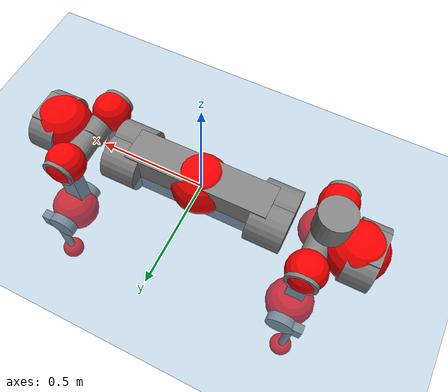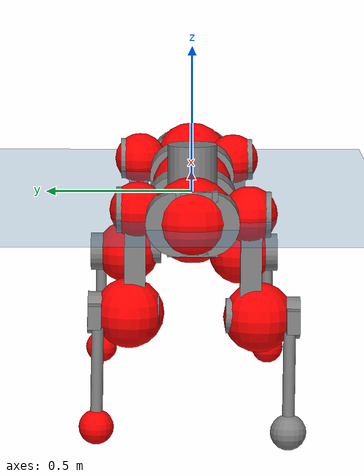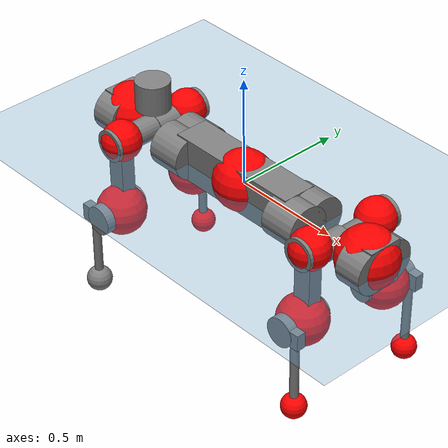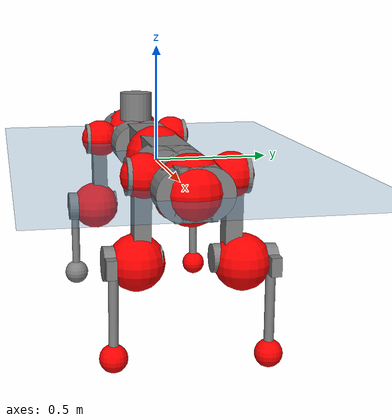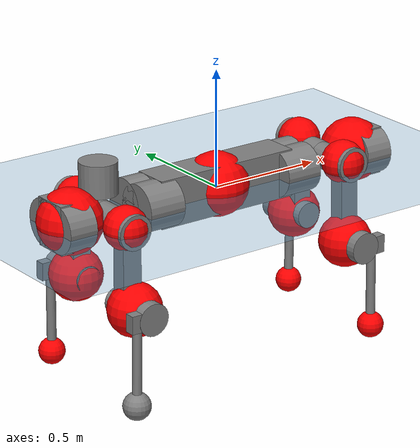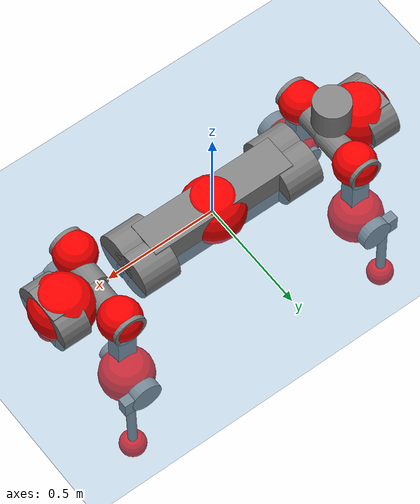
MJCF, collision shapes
<mujoco model="anymal_c">
  <compiler angle="radian" assetdir="assets" balanceinertia="true" inertiafromgeom="false"/>

  <option timestep="0.005" density="1.2" viscosity="2e-05"/>

  <size nkey="1"/>

  <visual>
    <quality shadowsize="8192"/>
    <map shadowclip="0.5"/>
  </visual>

  <default>
    <default class="/">
      <material specular="0" shininess="0.25"/>
      <geom contype="0" conaffinity="0" group="1" solref="-1000 -80"/>
      <site size="0.01 0.005 0.005" group="5"/>
      <general forcelimited="true" forcerange="-80 80" biastype="affine" gainprm="80" biasprm="0 -80 -2"/>
      <default class="anymal_c">
        <joint armature="0.01" damping="0.01" frictionloss="0.1"/>
        <default class="visual">
          <geom type="mesh" group="2"/>
          <default class="visual_zflip"/>
        </default>
        <default class="collision">
          <geom type="cylinder" group="3"/>
          <default class="foot">
            <geom size="0.03 0 0" type="sphere" condim="6" priority="1" friction="0.8 0.02 0.01" solimp="0.015 1 0.03"/>
          </default>
        </default>
      </default>
      <default class="reward_collision_sphere">
        <geom group="5" rgba="1 0 0 1"/>
      </default>
    </default>
  </default>

  <asset>
    <texture type="skybox" colorspace="auto" name="//unnamed_texture_0" builtin="gradient" rgb1="0.95 0.95 0.95" rgb2="0.95 0.95 0.95" width="100" height="600"/>
    <texture type="2d" colorspace="auto" name="texplane" builtin="checker" rgb1="0.345 0.575 0.748" rgb2="0.345 0.575 0.748" markrgb="1 1 1" width="512" height="512"/>
    <texture type="2d" colorspace="linear" name="base" file="base.png"/>
    <texture type="2d" colorspace="linear" name="top_shell" file="top_shell.png"/>
    <texture type="2d" colorspace="linear" name="bottom_shell" file="bottom_shell.png"/>
    <texture type="2d" colorspace="linear" name="remote" file="remote.png"/>
    <texture type="2d" colorspace="linear" name="hatch" file="hatch.png"/>
    <texture type="2d" colorspace="linear" name="handle" file="handle.png"/>
    <texture type="2d" colorspace="linear" name="face" file="face.png"/>
    <texture type="2d" colorspace="linear" name="battery" file="battery.png"/>
    <texture type="2d" colorspace="linear" name="lidar_cage" file="lidar_cage.png"/>
    <texture type="2d" colorspace="linear" name="depth_camera" file="depth_camera.png"/>
    <texture type="2d" colorspace="linear" name="wide_angle_camera" file="wide_angle_camera.png"/>
    <texture type="2d" colorspace="linear" name="lidar" file="lidar.png"/>
    <texture type="2d" colorspace="linear" name="drive" file="drive.png"/>
    <texture type="2d" colorspace="linear" name="hip_l" file="hip_l.png"/>
    <texture type="2d" colorspace="linear" name="shank_l" file="shank_l.png"/>
    <texture type="2d" colorspace="linear" name="foot" file="foot.png"/>
    <texture type="2d" colorspace="linear" name="thigh" file="thigh.png"/>
    <texture type="2d" colorspace="linear" name="shank_r" file="shank_r.png"/>
    <texture type="2d" colorspace="linear" name="hip_r" file="hip_r.png"/>
    <material name="MatPlane" class="/" texture="texplane" texuniform="true" texrepeat="2 2" specular="0.9" shininess="0.5"/>
    <material name="black_plastic" class="/" rgba="0.007 0.007 0.007 1"/>
    <material name="green" class="/" rgba="0.052 0.178 0.033 1"/>
    <material name="red" class="/" rgba="0.178 0.006 0.005 1"/>
    <material name="yellow" class="/" rgba="0.178 0.119 0.006 1"/>
    <material name="lwl" class="/" rgba="0.8 0.8 0.8 1"/>
    <material name="base" class="/" texture="base"/>
    <material name="top_shell" class="/" texture="top_shell"/>
    <material name="bottom_shell" class="/" texture="bottom_shell"/>
    <material name="hip_l" class="/" texture="hip_l"/>
    <material name="thigh" class="/" texture="thigh"/>
    <material name="shank_l" class="/" texture="shank_l"/>
    <material name="foot" class="/" texture="foot"/>
    <material name="hip_r" class="/" texture="hip_r"/>
    <material name="shank" class="/" texture="shank_r"/>
    <material name="hatch" class="/" texture="hatch"/>
    <material name="remote" class="/" texture="remote"/>
    <material name="handle" class="/" texture="handle"/>
    <material name="face" class="/" texture="face"/>
    <material name="depth_camera" class="/" texture="depth_camera"/>
    <material name="wide_angle_camera" class="/" texture="wide_angle_camera"/>
    <material name="battery" class="/" texture="battery"/>
    <material name="lidar_cage" class="/" texture="lidar_cage"/>
    <material name="lidar" class="/" texture="lidar"/>
    <material name="drive" class="/" texture="drive"/>
    <mesh name="base_0" class="/" file="base_0.obj"/>
    <mesh name="base_1" class="/" file="base_1.obj"/>
    <mesh name="base_2" class="/" file="base_2.obj"/>
    <mesh name="base_3" class="/" file="base_3.obj"/>
    <mesh name="base_4" class="/" file="base_4.obj"/>
    <mesh name="base_5" class="/" file="base_5.obj"/>
    <mesh name="top_shell" class="/" file="top_shell.obj"/>
    <mesh name="bottom_shell" class="/" file="bottom_shell.obj"/>
    <mesh name="remote" class="/" file="remote.obj"/>
    <mesh name="handle" class="/" file="handle.obj"/>
    <mesh name="face" class="/" file="face.obj"/>
    <mesh name="wide_angle_camera" class="/" file="wide_angle_camera.obj"/>
    <mesh name="depth_camera" class="/" file="depth_camera.obj"/>
    <mesh name="battery" class="/" file="battery.obj"/>
    <mesh name="lidar_cage" class="/" file="lidar_cage.obj"/>
    <mesh name="lidar" class="/" file="lidar.obj"/>
    <mesh name="drive" class="/" file="drive.obj"/>
    <mesh name="hip_l" class="/" file="hip_l.obj"/>
    <mesh name="thigh" class="/" file="thigh.obj"/>
    <mesh name="shank_l" class="/" file="shank_l.obj"/>
    <mesh name="foot" class="/" file="foot.obj"/>
    <mesh name="hip_r" class="/" file="hip_r.obj"/>
    <mesh name="hatch" class="/" file="hatch.obj"/>
    <mesh name="shank_r" class="/" file="shank_r.obj"/>
  </asset>

  <worldbody>
    <geom name="floor" class="/" size="100 100 0.125" type="plane" group="0" material="MatPlane"/>
    <light name="toplight_shadow" class="/" pos="0 0 5" dir="0.0990148 0.0990148 -0.990148" type="directional" ambient="0.04 0.04 0.04" diffuse="0.55 0.55 0.55" specular="0.12 0.12 0.12"/>
    <light name="toplight_fill" class="/" pos="0 0 5" dir="0.0990148 0.0990148 -0.990148" type="directional" castshadow="false" ambient="0.04 0.04 0.04" diffuse="0.3 0.3 0.3" specular="0.08 0.08 0.08"/>
    <body name="trunk" childclass="anymal_c" pos="3.67869e-05 -0.000664472 0.0139636" quat="0.999998 -0.00190654 0.000617561 -1.70424e-05">
      <inertial pos="-0.000930211 -0.0178134 0.043526" quat="0.497233 0.501899 0.500403 0.500455" mass="29.3175" diaginertia="5.92745 0.0825288 0.559444"/>
      <joint name="//unnamed_joint_0" type="free" armature="0" damping="0" frictionloss="0"/>
      <geom name="//unnamed_geom_1" class="visual" material="green" mesh="base_0"/>
      <geom name="//unnamed_geom_2" class="visual" material="yellow" mesh="base_1"/>
      <geom name="//unnamed_geom_3" class="visual" material="red" mesh="base_2"/>
      <geom name="//unnamed_geom_4" class="visual" material="black_plastic" mesh="base_3"/>
      <geom name="//unnamed_geom_5" class="visual" material="lwl" mesh="base_4"/>
      <geom name="//unnamed_geom_6" class="visual" material="base" mesh="base_5"/>
      <geom name="trunk_1" class="collision" size="0.330247 0.0797147 0.10249" type="box"/>
      <geom name="trunk_2" class="collision" size="0.10249 0.0825616" pos="0.346347 0.0461235 0" quat="0.707107 0 0.707107 0"/>
      <geom name="trunk_3" class="collision" size="0.10249 0.0825616" pos="-0.346347 0.0461235 0" quat="0.707107 0 0.707107 0"/>
      <geom name="trunk_4" class="collision" size="0.10249 0.0825616" pos="0.346347 -0.0461235 0" quat="0.707107 0 0.707107 0"/>
      <geom name="trunk_5" class="collision" size="0.10249 0.0825616" pos="-0.346347 -0.0461235 0" quat="0.707107 0 0.707107 0"/>
      <geom name="//unnamed_geom_12" class="visual" material="top_shell" mesh="top_shell"/>
      <geom name="//unnamed_geom_13" class="visual" material="bottom_shell" mesh="bottom_shell"/>
      <geom name="//unnamed_geom_14" class="visual" material="remote" mesh="remote"/>
      <geom name="//unnamed_geom_15" class="visual" material="handle" mesh="handle"/>
      <geom name="//unnamed_geom_16" class="visual" pos="0.660049 0 0" quat="1 0 0 0" material="face" mesh="face"/>
      <geom name="trunk_6" class="collision" size="0.062633 0.0797147 0.10249" pos="0.747631 0 0" type="box"/>
      <geom name="//unnamed_geom_18" class="collision" size="0.10249 0.062633" pos="0.747631 0.0461235 0" quat="0.707107 0 0.707107 0"/>
      <geom name="//unnamed_geom_19" class="collision" size="0.10249 0.062633" pos="0.747631 -0.0461235 0" quat="0.707107 0 0.707107 0"/>
      <geom name="//unnamed_geom_20" class="visual" pos="0.735113 0 -0.0307711" quat="0.965926 0 0.258819 0" material="depth_camera" mesh="depth_camera"/>
      <geom name="//unnamed_geom_21" class="visual" pos="0.816901 0 0.0174406" material="wide_angle_camera" mesh="wide_angle_camera"/>
      <geom name="//unnamed_geom_22" class="visual_zflip" pos="-0.660049 0 0" quat="0 0 0 1" material="face" mesh="face"/>
      <geom name="trunk_7" class="collision" size="0.062633 0.0797147 0.10249" pos="-0.747631 0 0" quat="0 0 0 1" type="box"/>
      <geom name="//unnamed_geom_24" class="collision" size="0.10249 0.062633" pos="-0.747631 -0.0461235 0" quat="0 -0.707107 0 0.707107"/>
      <geom name="//unnamed_geom_25" class="collision" size="0.10249 0.062633" pos="-0.747631 0.0461235 0" quat="0 -0.707107 0 0.707107"/>
      <geom name="//unnamed_geom_26" class="visual" pos="-0.735113 0 -0.0307711" quat="0 -0.258819 0 0.965926" material="depth_camera" mesh="depth_camera"/>
      <geom name="//unnamed_geom_27" class="visual_zflip" pos="-0.816901 0 0.0174406" quat="0 0 0 1" material="wide_angle_camera" mesh="wide_angle_camera"/>
      <geom name="//unnamed_geom_28" class="visual" material="battery" mesh="battery"/>
      <geom name="//unnamed_geom_29" class="visual" pos="0 0.038113 0.0370923" quat="0.683013 -0.183013 0.183013 0.683013" material="depth_camera" mesh="depth_camera"/>
      <geom name="//unnamed_geom_30" class="visual" pos="0 -0.038113 0.0370923" quat="0.683013 0.183013 0.183013 -0.683013" material="depth_camera" mesh="depth_camera"/>
      <geom name="//unnamed_geom_31" class="visual" pos="-0.579633 0 0.0856302" quat="1 0 0 0" material="lidar_cage" mesh="lidar_cage"/>
      <geom name="trunk_8" class="collision" size="0.0797147 0.0683269" pos="-0.579633 0 0.155532"/>
      <geom name="//unnamed_geom_33" class="visual" pos="-0.579633 -0.000366744 0.165668" quat="0.707107 0 0 -0.707107" material="lidar" mesh="lidar"/>
      <geom name="//unnamed_geom_34" class="visual" pos="0.47756 0.0687062 -8.73079e-09" quat="0.258819 0.965926 0 0" material="drive" mesh="drive"/>
      <geom name="//unnamed_geom_35" class="visual" pos="0.47756 -0.0687062 8.73079e-09" quat="0.258819 -0.965926 0 0" material="drive" mesh="drive"/>
      <geom name="//unnamed_geom_36" class="visual" pos="-0.47756 0.0687062 8.73079e-09" quat="0 0 0.965926 -0.258819" material="drive" mesh="drive"/>
      <geom name="//unnamed_geom_37" class="visual" pos="-0.47756 -0.0687062 -8.73079e-09" quat="0 0 -0.965926 -0.258819" material="drive" mesh="drive"/>
      <geom name="//unnamed_geom_38" class="visual" pos="0.184718 0 0.0850477" quat="1 0 0 0" material="hatch" mesh="hatch"/>
      <geom name="//unnamed_geom_39" class="reward_collision_sphere" size="0.136654"/>
      <geom name="//unnamed_geom_40" class="reward_collision_sphere" size="0.136654" pos="0.716579 0 0"/>
      <geom name="//unnamed_geom_41" class="reward_collision_sphere" size="0.136654" pos="-0.716579 0 0"/>
      <site name="imu" pos="0.349249 0.0651798 0.00509874" size="0.0113878"/>
      <camera name="track" pos="0 -1.31782 0" quat="0.707107 0.707107 0 0" mode="trackcom"/>
      <camera name="ego_camera" pos="0.716579 0 -0.0466015" quat="-0.5 -0.5 0.5 0.5"/>
      <body name="LF_HIP" pos="0.481912 0.0813904 -0.00524295" quat="0.262568 0.964913 -0.00124947 -0.000398998">
        <inertial pos="0.10641 -0.00597553 0.00196995" quat="-0.118865 0.689768 -0.131492 0.701998" mass="5.01788" diaginertia="0.0657124 0.000776019 0.00663312"/>
        <joint name="LF_HAA" pos="0 0 0" axis="0.999917 -0.012817 0.00106494" stiffness="0.000628349" range="-0.509552 0.448592" armature="0.00358709" damping="0" frictionloss="0.203184"/>
        <geom name="//unnamed_geom_42" class="visual" pos="0 -0.000513593 8.43572e-05" quat="0.258819 -0.965926 0 0" material="hip_l" mesh="hip_l"/>
        <geom name="//unnamed_geom_43" class="visual" pos="0.0953847 -0.103468 -0.0634808" quat="0.183013 -0.683013 0.683013 0.183013" material="drive" mesh="drive"/>
        <geom name="//unnamed_geom_44" class="collision" size="0.0569391 0.0797147" pos="0.0953847 -0.0078804 -0.00804458" quat="-0.353553 -0.612372 0.612372 -0.353553"/>
        <body name="LF_THIGH" pos="0.0975294 -0.0418712 -0.059371" quat="0.183463 -0.683337 0.682511 0.183221">
          <inertial pos="0.0532981 0.00290628 -0.274446" quat="0.994538 -0.00497524 -0.0831649 0.0628672" mass="4.92721" diaginertia="0.292187 0.00364666 0.013357"/>
          <joint name="LF_HFE" pos="0 0 0" axis="0.998543 -0.0495129 0.0214371" stiffness="0.0425408" range="-2.87631 2.93023" armature="0.00608445" damping="0.01224" frictionloss="0.0825454"/>
          <geom name="//unnamed_geom_45" class="visual" pos="0.0185728 2.92664e-05 0" quat="0.707107 0 0 -0.707107" material="thigh" mesh="thigh"/>
          <geom name="//unnamed_geom_46" class="collision" size="0.0740208 0.0455512" pos="0.0636959 0 0" quat="0.5 0.5 -0.5 -0.5"/>
          <geom name="//unnamed_geom_47" class="collision" size="0.0427043 0.0341634 0.160926" pos="0.047772 0 -0.164636" quat="0.707107 0 0 -0.707107" type="box"/>
          <geom name="//unnamed_geom_48" class="visual" pos="0.159718 0 -0.332036" quat="1 0 0 0" material="drive" mesh="drive"/>
          <geom name="//unnamed_geom_49" class="collision" size="0.0569391 0.0797147" pos="0.0482497 0 -0.332036" quat="0.707107 0 0.707107 0"/>
          <geom name="//unnamed_geom_50" class="reward_collision_sphere" size="0.0911025" pos="0.03981 0 0"/>
          <body name="LF_SHANK" pos="0.170271 -0.0137797 -0.346709" quat="0.999963 0.00610849 -0.00530371 -0.00301723">
            <inertial pos="0.0136237 -0.0399473 -0.0917099" quat="0.992925 -0.115983 -0.00104449 -0.0254465" mass="1.14902" diaginertia="0.100268 0.00116871 0.00266094"/>
            <joint name="LF_KFE" pos="0 0 0" axis="0.999168 0.0292794 0.0283888" range="-3.26008 3.27789" armature="0.017951" damping="0" frictionloss="0.193562"/>
            <geom name="//unnamed_geom_51" class="visual" pos="0.00605619 0.0322919 0" quat="0.707107 0 0 -0.707107" material="shank_l" mesh="shank_l"/>
            <geom name="LF_kfe_act" class="collision" size="0.0683269 0.0227756" pos="0.031848 0 0" quat="0.5 0.5 -0.5 -0.5"/>
            <geom name="//unnamed_geom_53" class="collision" size="0.0654788 0.0384339 0.0216368" pos="0.031848 -0.0378865 0" quat="0.5 0.5 -0.5 -0.5" type="box"/>
            <geom name="//unnamed_geom_54" class="visual" pos="0.0207793 -0.0475446 -0.393748" quat="0.382683 0 0 -0.92388" material="foot" mesh="foot"/>
            <geom name="LF_calf" class="collision" size="0.0199287 0.160855" pos="0.0207808 -0.0579509 -0.196874" quat="0.707107 0 0 -0.707107"/>
            <geom name="LF_foot" class="foot" size="0.0145666" pos="0.0207808 -0.0579509 -0.367534" quat="0.707107 0 0 -0.707107"/>
            <geom name="//unnamed_geom_57" class="reward_collision_sphere" size="0.113878" pos="-0.0796199 0 0"/>
            <geom name="//unnamed_geom_58" class="reward_collision_sphere" size="0.0569391" pos="0.0207808 -0.0579509 -0.367534"/>
            <site name="LF_foot" class="foot" pos="0.0207808 -0.0579509 -0.367534" quat="0.707107 0 0 -0.707107" size="0.0113878"/>
          </body>
        </body>
      </body>
      <body name="RF_HIP" pos="0.468343 -0.0561294 -0.000979246" quat="0.254906 -0.966943 -0.00380714 -0.00535723">
        <inertial pos="0.0931465 0.00375838 -0.00295693" quat="0.14468 0.670894 0.128771 0.715812" mass="4.41895" diaginertia="0.0770156 0.000843149 0.00674068"/>
        <joint name="RF_HAA" pos="0 0 0" axis="0.999865 0.0130835 0.00990372" range="-0.787202 1.06332" armature="0.0136119" damping="0" frictionloss="0.18807"/>
        <geom name="//unnamed_geom_59" class="visual" pos="0 0.000513589 8.4357e-05" quat="0.258819 0.965926 0 0" material="hip_r" mesh="hip_r"/>
        <geom name="//unnamed_geom_60" class="visual" pos="0.0953847 0.103468 -0.0634808" quat="0.183013 0.683013 0.683013 -0.183013" material="drive" mesh="drive"/>
        <geom name="//unnamed_geom_61" class="collision" size="0.0569391 0.0797147" pos="0.0953847 0.0078804 -0.00804458" quat="-0.353553 0.612372 0.612372 0.353553"/>
        <body name="RF_THIGH" pos="0.0767855 0.0357349 -0.0462796" quat="0.185226 0.685175 0.680078 -0.183633">
          <inertial pos="0.0453439 0.00621133 -0.286854" quat="0.993405 -0.00274178 -0.068343 0.0920228" mass="3.95085" diaginertia="0.287402 0.00320629 0.00624174"/>
          <joint name="RF_HFE" pos="0 0 0" axis="0.99616 -0.0608236 -0.0629786" stiffness="0.0122226" range="-3.52249 3.48425" armature="0.00933382" damping="0.0759445" frictionloss="0.157971"/>
          <geom name="//unnamed_geom_62" class="visual" pos="0.0185728 2.92664e-05 0" quat="0.707107 0 0 -0.707107" material="thigh" mesh="thigh"/>
          <geom name="//unnamed_geom_63" class="collision" size="0.0740208 0.0455512" pos="0.0636959 0 0" quat="0.5 0.5 0.5 0.5"/>
          <geom name="//unnamed_geom_64" class="collision" size="0.0427043 0.0341634 0.160926" pos="0.047772 0 -0.164636" quat="0.707107 0 0 0.707107" type="box"/>
          <geom name="//unnamed_geom_65" class="visual" pos="0.159718 0 -0.332036" quat="1 0 0 0" material="drive" mesh="drive"/>
          <geom name="//unnamed_geom_66" class="collision" size="0.0569391 0.0797147" pos="0.0482497 0 -0.332036" quat="0.707107 0 0.707107 0"/>
          <geom name="//unnamed_geom_67" class="reward_collision_sphere" size="0.0911025" pos="0.03981 0 0"/>
          <body name="RF_SHANK" pos="0.142153 -0.00735638 -0.343575" quat="0.999994 -0.000191267 0.00332953 0.00117767">
            <inertial pos="0.0186351 0.0480824 -0.112394" quat="0.988 0.144341 0.0157743 0.0526502" mass="1.04698" diaginertia="0.0851434 0.00116473 0.00243713"/>
            <joint name="RF_KFE" pos="0 0 0" axis="0.995361 0.006774 -0.0959725" stiffness="0.0473446" range="-3.30905 3.45305" armature="0.0109476" damping="0" frictionloss="0.222921"/>
            <geom name="//unnamed_geom_68" class="visual" pos="0.00605615 -0.0322918 0" quat="0.707107 0 0 0.707107" material="shank" mesh="shank_r"/>
            <geom name="RF_kfe_act" class="collision" size="0.0683269 0.0227756" pos="0.031848 0 0" quat="0.5 0.5 0.5 0.5"/>
            <geom name="//unnamed_geom_70" class="collision" size="0.0654788 0.0384339 0.0216368" pos="0.031848 0.0378865 0" quat="0.5 0.5 0.5 0.5" type="box"/>
            <geom name="//unnamed_geom_71" class="visual" pos="0.0207823 0.0475446 -0.393748" quat="0.382683 0 0 0.92388" material="foot" mesh="foot"/>
            <geom name="RF_calf" class="collision" size="0.0199287 0.160855" pos="0.0207808 0.0579509 -0.196874" quat="0.707107 0 0 0.707107"/>
            <geom name="RF_foot" class="foot" size="0.0245952" pos="0.0207808 0.0579509 -0.367534" quat="0.707107 0 0 0.707107"/>
            <geom name="//unnamed_geom_74" class="reward_collision_sphere" size="0.113878" pos="-0.0796199 0 0"/>
            <geom name="//unnamed_geom_75" class="reward_collision_sphere" size="0.0569391" pos="0.0207808 0.0579509 -0.367534"/>
            <site name="RF_foot" class="foot" pos="0.0207808 0.0579509 -0.367534" quat="0.707107 0 0 0.707107" size="0.0113878"/>
          </body>
        </body>
      </body>
      <body name="LH_HIP" pos="-0.46998 0.0543284 -0.00518377" quat="-0.00185976 -0.000371101 0.966491 -0.256694">
        <inertial pos="0.101676 0.0259448 -0.0164261" quat="0.0532527 0.721678 0.137367 0.67637" mass="5.06702" diaginertia="0.0526191 0.000506266 0.00794359"/>
        <joint name="LH_HAA" pos="0 0 0" axis="0.997534 -0.038658 -0.0585831" stiffness="0.0726729" range="-0.644559 0.94502" armature="0.0103608" damping="0.077378" frictionloss="0.0482128"/>
        <geom name="//unnamed_geom_76" class="visual" pos="0 0.000513589 8.4357e-05" quat="-0.258819 -0.965926 0 0" material="hip_r" mesh="hip_r"/>
        <geom name="//unnamed_geom_77" class="visual" pos="0.0953847 0.103468 -0.0634808" quat="0.183013 0.683013 0.683013 -0.183013" material="drive" mesh="drive"/>
        <geom name="//unnamed_geom_78" class="collision" size="0.0569391 0.0797147" pos="0.0953847 0.0078804 -0.00804458" quat="-0.353553 0.612372 0.612372 0.353553"/>
        <body name="LH_THIGH" pos="0.0933624 0.0638825 -0.0526606" quat="0.186877 0.685255 0.679404 -0.184154">
          <inertial pos="0.0583865 0.0138425 -0.286293" quat="0.995059 0.00102115 -0.0316422 0.0941028" mass="4.2286" diaginertia="0.263325 0.00334171 0.00604312"/>
          <joint name="LH_HFE" pos="0 0 0" axis="0.999959 0.00485558 -0.007693" range="-3.11359 3.0894" armature="0.0119888" damping="0.0543219" frictionloss="0.105073"/>
          <geom name="//unnamed_geom_79" class="visual" pos="0.0185728 2.92664e-05 0" quat="0.707107 0 0 -0.707107" material="thigh" mesh="thigh"/>
          <geom name="//unnamed_geom_80" class="collision" size="0.0740208 0.0455512" pos="0.0636959 0 0" quat="0.5 0.5 -0.5 -0.5"/>
          <geom name="//unnamed_geom_81" class="collision" size="0.0427043 0.0341634 0.160926" pos="0.047772 0 -0.164636" quat="0.707107 0 0 -0.707107" type="box"/>
          <geom name="//unnamed_geom_82" class="visual" pos="0.159718 0 -0.332036" quat="1 0 0 0" material="drive" mesh="drive"/>
          <geom name="//unnamed_geom_83" class="collision" size="0.0569391 0.0797147" pos="0.0482497 0 -0.332036" quat="0.707107 0 0.707107 0"/>
          <geom name="//unnamed_geom_84" class="reward_collision_sphere" size="0.0911025" pos="0.03981 0 0"/>
          <body name="LH_SHANK" pos="0.145157 -0.00313873 -0.337177" quat="0.99997 -0.00379585 -0.00558602 0.00382493">
            <inertial pos="-0.00613894 0.0496183 -0.0804241" quat="0.993057 0.115113 0.00015425 0.0242303" mass="0.789202" diaginertia="0.087086 0.000680059 0.00136302"/>
            <joint name="LH_KFE" pos="0 0 0" axis="0.99796 -0.0179133 0.0612745" range="-3.10801 3.53616" armature="0.013485" damping="0" frictionloss="0.0502766"/>
            <geom name="//unnamed_geom_85" class="visual" pos="0.00605615 -0.0322918 0" quat="-0.707107 0 0 -0.707107" material="shank" mesh="shank_r"/>
            <geom name="LH_kfe_act" class="collision" size="0.0683269 0.0227756" pos="0.031848 0 0" quat="0.5 0.5 -0.5 -0.5"/>
            <geom name="//unnamed_geom_87" class="collision" size="0.0654788 0.0384339 0.0216368" pos="0.031848 0.0378865 0" quat="0.5 0.5 -0.5 -0.5" type="box"/>
            <geom name="//unnamed_geom_88" class="visual" pos="0.0207823 0.0475446 -0.393748" quat="-0.382683 0 0 -0.92388" material="foot" mesh="foot"/>
            <geom name="LH_calf" class="collision" size="0.0199287 0.160855" pos="0.0207808 0.0579509 -0.196874" quat="0.707107 0 0 -0.707107"/>
            <geom name="LH_foot" class="foot" size="0.0568301" pos="0.0207808 0.0579509 -0.367534" quat="0.707107 0 0 -0.707107"/>
            <geom name="//unnamed_geom_91" class="reward_collision_sphere" size="0.113878" pos="-0.0796199 0 0"/>
            <geom name="//unnamed_geom_92" class="reward_collision_sphere" size="0.0569391" pos="0.0207808 0.0579509 -0.367534"/>
            <site name="LH_foot" class="foot" pos="0.0207808 0.0579509 -0.367534" quat="0.707107 0 0 -0.707107" size="0.0113878"/>
          </body>
        </body>
      </body>
      <body name="RH_HIP" pos="-0.474853 -0.0835265 -0.00310737" quat="-0.00471903 0.000435935 -0.964187 -0.265183">
        <inertial pos="0.0826876 -0.0213352 0.000999161" quat="-0.0443186 0.719105 -0.179104 0.66996" mass="5.28413" diaginertia="0.0586855 0.000812281 0.00839572"/>
        <joint name="RH_HAA" pos="0 0 0" axis="0.998911 -0.0369721 -0.0284495" stiffness="0.0427508" range="-0.400025 0.332865" armature="0.0214966" damping="0.00207251" frictionloss="0.0406457"/>
        <geom name="//unnamed_geom_93" class="visual" pos="0 -0.000513593 8.43572e-05" quat="-0.258819 0.965926 0 0" material="hip_l" mesh="hip_l"/>
        <geom name="//unnamed_geom_94" class="visual" pos="0.0953847 -0.103468 -0.0634808" quat="-0.183013 0.683013 -0.683013 -0.183013" material="drive" mesh="drive"/>
        <geom name="//unnamed_geom_95" class="collision" size="0.0569391 0.0797147" pos="0.0953847 -0.0078804 -0.00804458" quat="0.353553 0.612372 -0.612372 0.353553"/>
        <body name="RH_THIGH" pos="0.101547 -0.0514201 -0.0309703" quat="-0.181054 0.684466 -0.681802 -0.184043">
          <inertial pos="0.0497162 -0.0193686 -0.298419" quat="0.993363 0.057397 -0.0895195 0.0438462" mass="5.78463" diaginertia="0.407019 0.00482338 0.0119098"/>
          <joint name="RH_HFE" pos="0 0 0" axis="0.99786 0.0409459 -0.0509711" range="-3.34656 3.48698" armature="0" damping="0.00542086" frictionloss="0.0630666"/>
          <geom name="//unnamed_geom_96" class="visual" pos="0.0185728 2.92664e-05 0" quat="0.707107 0 0 -0.707107" material="thigh" mesh="thigh"/>
          <geom name="//unnamed_geom_97" class="collision" size="0.0740208 0.0455512" pos="0.0636959 0 0" quat="0.5 0.5 0.5 0.5"/>
          <geom name="//unnamed_geom_98" class="collision" size="0.0427043 0.0341634 0.160926" pos="0.047772 0 -0.164636" quat="0.707107 0 0 0.707107" type="box"/>
          <geom name="//unnamed_geom_99" class="visual" pos="0.159718 0 -0.332036" quat="1 0 0 0" material="drive" mesh="drive"/>
          <geom name="//unnamed_geom_100" class="collision" size="0.0569391 0.0797147" pos="0.0482497 0 -0.332036" quat="0.707107 0 0.707107 0"/>
          <geom name="//unnamed_geom_101" class="reward_collision_sphere" size="0.0911025" pos="0.03981 0 0"/>
          <body name="RH_SHANK" pos="0.154265 0.0149177 -0.338704" quat="0.999975 -0.0070596 -0.00102571 0.000202399">
            <inertial pos="-0.00260864 -0.0370952 -0.0916104" quat="0.981715 -0.184289 0.0471262 0.00723125" mass="1.2027" diaginertia="0.10835 0.00145526 0.00207827"/>
            <joint name="RH_KFE" pos="0 0 0" axis="0.996401 0.0844745 -0.00705203" range="-3.44241 2.80785" armature="0.0136947" damping="0.00735322" frictionloss="0.0773033"/>
            <geom name="//unnamed_geom_102" class="visual" pos="0.00605619 0.0322919 0" quat="0.707107 0 0 -0.707107" material="shank_l" mesh="shank_l"/>
            <geom name="RH_kfe_act" class="collision" size="0.0683269 0.0227756" pos="0.031848 0 0" quat="0.5 0.5 0.5 0.5"/>
            <geom name="//unnamed_geom_104" class="collision" size="0.0654788 0.0384339 0.0216368" pos="0.031848 -0.0378865 0" quat="0.5 0.5 0.5 0.5" type="box"/>
            <geom name="//unnamed_geom_105" class="visual" pos="0.0207793 -0.0475446 -0.393748" quat="0.382683 0 0 -0.92388" material="foot" mesh="foot"/>
            <geom name="RH_calf" class="collision" size="0.0199287 0.160855" pos="0.0207808 -0.0579509 -0.196874" quat="0.707107 0 0 0.707107"/>
            <geom name="RH_foot" class="foot" size="0.0587173" pos="0.0207808 -0.0579509 -0.367534" quat="0.707107 0 0 0.707107"/>
            <geom name="//unnamed_geom_108" class="reward_collision_sphere" size="0.113878" pos="-0.0796199 0 0"/>
            <geom name="//unnamed_geom_109" class="reward_collision_sphere" size="0.0569391" pos="0.0207808 -0.0579509 -0.367534"/>
            <site name="RH_foot" class="foot" pos="0.0207808 -0.0579509 -0.367534" quat="0.707107 0 0 0.707107" size="0.0113878"/>
          </body>
        </body>
      </body>
    </body>
  </worldbody>

  <contact>
    <pair class="/" geom1="floor" geom2="LF_foot" name="//unnamed_contact_0"/>
    <pair class="/" geom1="floor" geom2="RF_foot" name="//unnamed_contact_1"/>
    <pair class="/" geom1="floor" geom2="LH_foot" name="//unnamed_contact_2"/>
    <pair class="/" geom1="floor" geom2="RH_foot" name="//unnamed_contact_3"/>
  </contact>

  <actuator>
    <general name="LF_HAA" class="/" joint="LF_HAA" forcerange="-132.339 132.339" gainprm="51.2693" biasprm="0 -51.2693 -1.68272"/>
    <general name="LF_HFE" class="/" joint="LF_HFE" forcerange="-156.149 156.149" gainprm="51.2693" biasprm="0 -51.2693 -1.68272"/>
    <general name="LF_KFE" class="/" joint="LF_KFE" forcerange="-63.4114 63.4114" gainprm="51.2693" biasprm="0 -51.2693 -1.68272"/>
    <general name="RF_HAA" class="/" joint="RF_HAA" forcerange="-121.106 121.106" gainprm="51.2693" biasprm="0 -51.2693 -1.68272"/>
    <general name="RF_HFE" class="/" joint="RF_HFE" forcerange="-58.7705 58.7705" gainprm="51.2693" biasprm="0 -51.2693 -1.68272"/>
    <general name="RF_KFE" class="/" joint="RF_KFE" forcerange="-128.318 128.318" gainprm="51.2693" biasprm="0 -51.2693 -1.68272"/>
    <general name="LH_HAA" class="/" joint="LH_HAA" forcerange="-45.6885 45.6885" gainprm="51.2693" biasprm="0 -51.2693 -1.68272"/>
    <general name="LH_HFE" class="/" joint="LH_HFE" forcerange="-93.5703 93.5703" gainprm="51.2693" biasprm="0 -51.2693 -1.68272"/>
    <general name="LH_KFE" class="/" joint="LH_KFE" forcerange="-130.944 130.944" gainprm="51.2693" biasprm="0 -51.2693 -1.68272"/>
    <general name="RH_HAA" class="/" joint="RH_HAA" forcerange="-155.289 155.289" gainprm="51.2693" biasprm="0 -51.2693 -1.68272"/>
    <general name="RH_HFE" class="/" joint="RH_HFE" forcerange="-114.844 114.844" gainprm="51.2693" biasprm="0 -51.2693 -1.68272"/>
    <general name="RH_KFE" class="/" joint="RH_KFE" forcerange="-116.813 116.813" gainprm="51.2693" biasprm="0 -51.2693 -1.68272"/>
  </actuator>

  <sensor>
    <gyro site="imu" name="imu_angular_velocity"/>
    <velocimeter site="imu" name="imu_linear_velocity"/>
    <framelinvel objtype="site" objname="LF_foot" name="LF_foot_global_linear_velocity"/>
    <framelinvel objtype="site" objname="RF_foot" name="RF_foot_global_linear_velocity"/>
    <framelinvel objtype="site" objname="LH_foot" name="LH_foot_global_linear_velocity"/>
    <framelinvel objtype="site" objname="RH_foot" name="RH_foot_global_linear_velocity"/>
  </sensor>

  <keyframe>
    <key name="home" qpos="0 0 0.55 1 0 0 0 0 0.4 -0.8 0 -0.4 0.8 0 -0.4 0.8 0 0.4 -0.8"/>
  </keyframe>
</mujoco>
